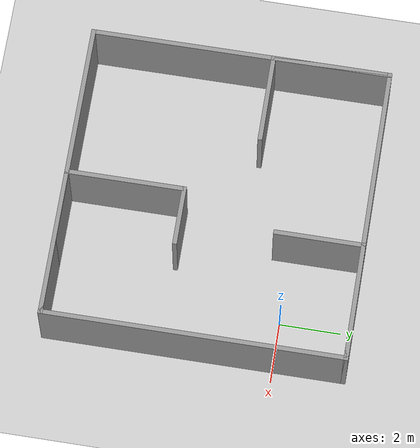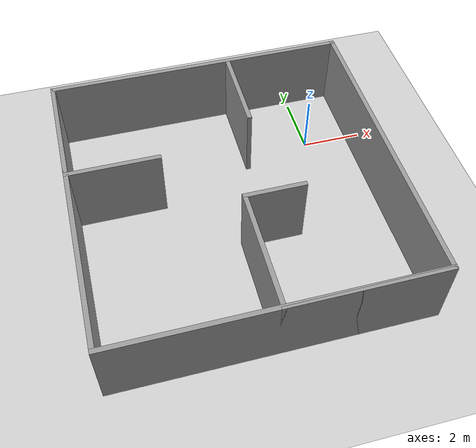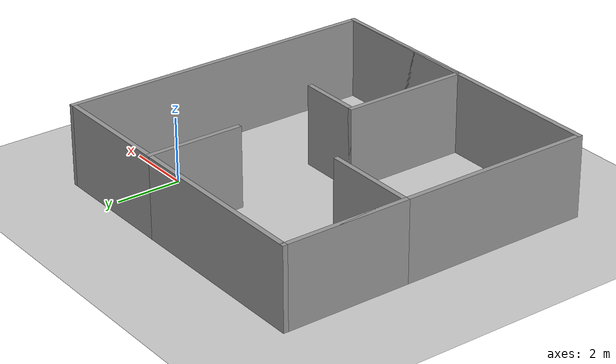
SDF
<sdf version="1.6">
 <world name="default">
  <light name="sun" type="directional">
   <pose>0 0 10 0 -0 0</pose>
   <diffuse>0.8 0.8 0.8 1</diffuse>
   <specular>0.1 0.1 0.1 1</specular>
   <attenuation>
    <range>1000</range>
    <constant>0.9</constant>
    <linear>0.01</linear>
    <quadratic>0.001</quadratic>
   </attenuation>
   <direction>-0.5 0.5 -1</direction>
  </light>
  <model name="ground_plane">
   <static>1</static>
   <link name="link">
    <collision name="collision">
     <geometry><plane><normal>0 0 1</normal><size>100 100</size></plane></geometry>
     <surface><friction><ode><mu>100</mu><mu2>50</mu2></ode></friction></surface>
    </collision>
    <visual name="visual">
     <cast_shadows>0</cast_shadows>
     <geometry><plane><normal>0 0 1</normal><size>100 100</size></plane></geometry>
     <material>
      <script><uri>file://media/materials/scripts/gazebo.material</uri><name>Gazebo/Grey</name></script>
     </material>
    </visual>
   </link>
  </model>
  <gravity>0 0 -9.8</gravity>
  <magnetic_field>6e-06 2.3e-05 -4.2e-05</magnetic_field>
  <atmosphere type="adiabatic"/>
  <physics name="default_physics" default="0" type="ode">
   <max_step_size>0.001</max_step_size>
   <real_time_factor>1</real_time_factor>
   <real_time_update_rate>1000</real_time_update_rate>
  </physics>
  <scene><ambient>0.4 0.4 0.4 1</ambient><background>0.7 0.7 0.7 1</background><shadows>1</shadows></scene>
  <spherical_coordinates>
   <surface_model>EARTH_WGS84</surface_model>
   <latitude_deg>0</latitude_deg>
   <longitude_deg>0</longitude_deg>
   <elevation>0</elevation>
   <heading_deg>0</heading_deg>
  </spherical_coordinates>
  <model name="floor">
   <pose>-3.3392 -2.59466 0 0 -0 0</pose>
   <link name="Wall_0">
    <collision name="Wall_0_Collision">
     <geometry><box><size>10 0.15 2.5</size></box></geometry>
     <pose>0 0 1.25 0 -0 0</pose>
    </collision>
    <visual name="Wall_0_Visual">
     <pose>0 0 1.25 0 -0 0</pose>
     <geometry><box><size>10 0.15 2.5</size></box></geometry>
     <material>
      <script><uri>file://media/materials/scripts/gazebo.material</uri><name>Gazebo/Grey</name></script>
      <ambient>1 1 1 1</ambient>
     </material>
    </visual>
    <pose>0 -4.925 0 0 -0 0</pose>
   </link>
   <link name="Wall_1">
    <collision name="Wall_1_Collision">
     <geometry><box><size>10 0.15 2.5</size></box></geometry>
     <pose>0 0 1.25 0 -0 0</pose>
    </collision>
    <visual name="Wall_1_Visual">
     <pose>0 0 1.25 0 -0 0</pose>
     <geometry><box><size>10 0.15 2.5</size></box></geometry>
     <material>
      <script><uri>file://media/materials/scripts/gazebo.material</uri><name>Gazebo/Grey</name></script>
      <ambient>1 1 1 1</ambient>
     </material>
    </visual>
    <pose>4.925 0 0 0 -0 1.5708</pose>
   </link>
   <link name="Wall_10">
    <collision name="Wall_10_Collision">
     <geometry><box><size>3 0.15 2.5</size></box></geometry>
     <pose>0 0 1.25 0 -0 0</pose>
    </collision>
    <visual name="Wall_10_Visual">
     <pose>0 0 1.25 0 -0 0</pose>
     <geometry><box><size>3 0.15 2.5</size></box></geometry>
     <material>
      <script><uri>file://media/materials/scripts/gazebo.material</uri><name>Gazebo/Grey</name></script>
      <ambient>1 1 1 1</ambient>
     </material>
    </visual>
    <pose>-3.5 1.075 0 0 -0 0</pose>
   </link>
   <link name="Wall_12">
    <collision name="Wall_12_Collision">
     <geometry><box><size>4 0.15 2.5</size></box></geometry>
     <pose>0 0 1.25 0 -0 0</pose>
    </collision>
    <visual name="Wall_12_Visual">
     <pose>0 0 1.25 0 -0 0</pose>
     <geometry><box><size>4 0.15 2.5</size></box></geometry>
     <material>
      <script><uri>file://media/materials/scripts/gazebo.material</uri><name>Gazebo/Grey</name></script>
      <ambient>1 1 1 1</ambient>
     </material>
    </visual>
    <pose>3 4.925 0 0 -0 3.14159</pose>
   </link>
   <link name="Wall_13">
    <collision name="Wall_13_Collision">
     <geometry><box><size>3 0.15 2.5</size></box></geometry>
     <pose>0 0 1.25 0 -0 0</pose>
    </collision>
    <visual name="Wall_13_Visual">
     <pose>0 0 1.25 0 -0 0</pose>
     <geometry><box><size>3 0.15 2.5</size></box></geometry>
     <material>
      <script><uri>file://media/materials/scripts/gazebo.material</uri><name>Gazebo/Grey</name></script>
      <ambient>1 1 1 1</ambient>
     </material>
    </visual>
    <pose>1.075 3.5 0 0 0 -1.5708</pose>
   </link>
   <link name="Wall_2">
    <collision name="Wall_2_Collision">
     <geometry><box><size>10 0.15 2.5</size></box></geometry>
     <pose>0 0 1.25 0 -0 0</pose>
    </collision>
    <visual name="Wall_2_Visual">
     <pose>0 0 1.25 0 -0 0</pose>
     <geometry><box><size>10 0.15 2.5</size></box></geometry>
     <material>
      <script><uri>file://media/materials/scripts/gazebo.material</uri><name>Gazebo/Grey</name></script>
      <ambient>1 1 1 1</ambient>
     </material>
    </visual>
    <pose>0 4.925 0 0 -0 3.14159</pose>
   </link>
   <link name="Wall_3">
    <collision name="Wall_3_Collision">
     <geometry><box><size>10 0.15 2.5</size></box></geometry>
     <pose>0 0 1.25 0 -0 0</pose>
    </collision>
    <visual name="Wall_3_Visual">
     <pose>0 0 1.25 0 -0 0</pose>
     <geometry><box><size>10 0.15 2.5</size></box></geometry>
     <material>
      <script><uri>file://media/materials/scripts/gazebo.material</uri><name>Gazebo/Grey</name></script>
      <ambient>1 1 1 1</ambient>
     </material>
    </visual>
    <pose>-4.925 0 0 0 0 -1.5708</pose>
   </link>
   <link name="Wall_5">
    <collision name="Wall_5_Collision">
     <geometry><box><size>5 0.15 2.5</size></box></geometry>
     <pose>0 0 1.25 0 -0 0</pose>
    </collision>
    <visual name="Wall_5_Visual">
     <pose>0 0 1.25 0 -0 0</pose>
     <geometry><box><size>5 0.15 2.5</size></box></geometry>
     <material>
      <script><uri>file://media/materials/scripts/gazebo.material</uri><name>Gazebo/Grey</name></script>
      <ambient>1 1 1 1</ambient>
     </material>
    </visual>
    <pose>2.5 -4.925 0 0 -0 3.14159</pose>
   </link>
   <link name="Wall_6">
    <collision name="Wall_6_Collision">
     <geometry><box><size>4 0.15 2.5</size></box></geometry>
     <pose>0 0 1.25 0 -0 0</pose>
    </collision>
    <visual name="Wall_6_Visual">
     <pose>0 0 1.25 0 -0 0</pose>
     <geometry><box><size>4 0.15 2.5</size></box></geometry>
     <material>
      <script><uri>file://media/materials/scripts/gazebo.material</uri><name>Gazebo/Grey</name></script>
      <ambient>1 1 1 1</ambient>
     </material>
    </visual>
    <pose>0.075 -3 0 0 -0 1.5708</pose>
   </link>
   <link name="Wall_7">
    <collision name="Wall_7_Collision">
     <geometry><box><size>2 0.15 2.5</size></box></geometry>
     <pose>0 0 1.25 0 -0 0</pose>
    </collision>
    <visual name="Wall_7_Visual">
     <pose>0 0 1.25 0 -0 0</pose>
     <geometry><box><size>2 0.15 2.5</size></box></geometry>
     <material>
      <script><uri>file://media/materials/scripts/gazebo.material</uri><name>Gazebo/Grey</name></script>
      <ambient>1 1 1 1</ambient>
     </material>
    </visual>
    <pose>1 -1.075 0 0 -0 0</pose>
   </link>
   <link name="Wall_9">
    <collision name="Wall_9_Collision">
     <geometry><box><size>4 0.15 2.5</size></box></geometry>
     <pose>0 0 1.25 0 -0 0</pose>
    </collision>
    <visual name="Wall_9_Visual">
     <pose>0 0 1.25 0 -0 0</pose>
     <geometry><box><size>4 0.15 2.5</size></box></geometry>
     <material>
      <script><uri>file://media/materials/scripts/gazebo.material</uri><name>Gazebo/Grey</name></script>
      <ambient>1 1 1 1</ambient>
     </material>
    </visual>
    <pose>-4.925 3 0 0 0 -1.5708</pose>
   </link>
   <static>1</static>
  </model>
 </world>
</sdf>
